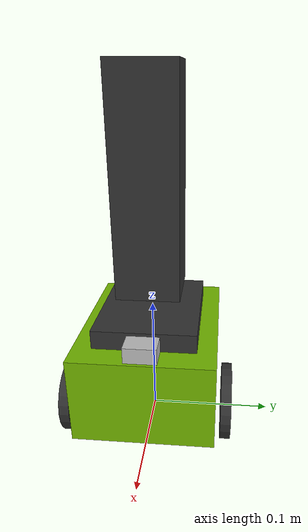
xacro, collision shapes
<?xml version='1.0'?>

<robot name="jetbot" xmlns:xacro="http://www.ros.org/wiki/xacro">
<xacro:include filename="$(find jetbot)/urdf/jetbot.gazebo" />

<!-- Define constant peroperties-->
<xacro:property name="degree_90" value="1.5708" />
<xacro:property name="wheel_radius" value="0.03" />
<xacro:property name="wheel_length" value="0.008" />
<xacro:property name="wheel_m" value="0.032" />
<xacro:property name="wheel_x_offset" value="-0.02" />
<xacro:property name="chassis_w" value="0.11" />
<xacro:property name="chassis_l" value="0.14" />
<xacro:property name="chassis_h" value="0.1" />
<xacro:property name="chassis_m" value="0.56" />
<xacro:property name="caster_ball_radius" value="0.0125" />
<xacro:property name="chassis_ixx" value="0.004" />
<xacro:property name="chassis_iyy" value="0.003" />
<xacro:property name="chassis_izz" value="0.004" />
<xacro:property name="chassis_igain" value="10.0" />
<xacro:property name="wheel_ixx" value="0.00006" />
<xacro:property name="wheel_iyy" value="0.00006" />
<xacro:property name="wheel_izz" value="0.00006" />
<xacro:property name="wheel_igain" value="6.5" />
<xacro:property name="hokuyo_w" value="0.05" />
<xacro:property name="hokuyo_l" value="0.05" />
<xacro:property name="hokuyo_h" value="0.07" />
<xacro:property name="hokuyo_m" value="1e-5" />
<xacro:property name="hokuyo_stand_h" value="0.10" />
<xacro:property name="jetson_w" value="0.08" />
<xacro:property name="jetson_l" value="0.1" />
<xacro:property name="jetson_h" value="0.029" />
<xacro:property name="jetson_m" value="0.023" />

<!-- Define RGB color names  -->
  <material name="black">
    <color rgba="0.2 0.2 0.2 1"/>
  </material>
  <material name="grey">
    <color rgba="0.75 0.75 0.75 1"/>
  </material>
  <material name="red">
        <color rgba="0.9 0.1 0.1 1"/>
  </material>
  <material name="green">
        <color rgba="0.46 0.73 0 1"/>
  </material>

<!-- Dummy Link for KDL does not support a root link with an inertia. -->
  <link name="robot_footprint"></link>
  <joint name="robot_footprint_joint" type="fixed">
    <origin xyz="0 0 0" rpy="0 0 ${degree_90}" />
    <parent link="robot_footprint"/>
    <child link="base_link" />
  </joint>

<!-- base_link Link  -->
  <link name='base_link'>
    <inertial>
      <mass value="${chassis_m*wheel_igain}"/>
      <origin xyz="0 0 ${chassis_h/2}" rpy="0 0 0"/>
      <inertia
          ixx="${chassis_ixx*chassis_igain}" ixy="0" ixz="0"
          iyy="${chassis_iyy*chassis_igain}" iyz="0"
          izz="${chassis_izz*chassis_igain}"
      />
    </inertial>
    <collision>
      <origin xyz="0 0 ${chassis_h/2}" rpy="0 0 0"/>
      <geometry>
        <box size="${chassis_w} ${chassis_l} ${chassis_l/2}"/>
      </geometry>
    </collision>

    <visual>
      <origin xyz="0 0 0" rpy="0 0 0"/>
      <geometry>
	<mesh filename="package://jetbot/meshes/jetbot-chassis_no_board.stl" scale="0.001 0.001 0.001" />
      </geometry>
      <material name="green"/>
    </visual>

  </link>
  <gazebo reference="base_link">
    <implicitSpringDamper>1</implicitSpringDamper>
    <material>Gazebo/Green</material>
  </gazebo>

<!-- back_caster Link  -->

  <link name="back_caster">
    <inertial>
      <mass value="${wheel_m}"/>
      <origin xyz="0 0 0" rpy="0 0 0"/>
      <inertia
          ixx="${wheel_ixx/20}" ixy="0" ixz="0"
          iyy="${wheel_iyy/20}" iyz="0"
          izz="${wheel_izz/20}"
      />
    </inertial>
    <collision>
      <origin xyz="0 0 0" rpy=" 0 0 0"/>
      <geometry>
        <sphere radius="${caster_ball_radius}"/>
      </geometry>
    </collision>
    <visual>
      <origin xyz="0 0 0" rpy=" 0 0 0"/>
      <geometry>
        <sphere radius="${caster_ball_radius/2}"/>
      </geometry>
    </visual>
    <material name="white"/>
  </link>
 <gazebo reference="back_caster">
    <material>Gazebo/White</material>
  </gazebo>

<!-- left_wheel Link  -->
  <link name="left_wheel">
    <inertial>
      <mass value="${wheel_m*1}"/>
      <origin xyz="0 0 0" rpy=" ${degree_90} 0 0"/>
      <inertia
          ixx="${wheel_ixx*wheel_igain}" ixy="0" ixz="0"
          iyy="${wheel_iyy*wheel_igain}" iyz="0"
          izz="${wheel_izz*wheel_igain}"
      />
    </inertial>
    <visual>
      <!-- Offset left joint back -0.008 same as stl wheel thickness -->
      <origin xyz="0 ${-0.008 -wheel_length}  0" rpy=" 0 0 ${degree_90}"/>
      <geometry>
       <mesh filename="package://jetbot/meshes/jetbot-wheel.stl" scale="0.001 0.001 0.001" />
      </geometry>
      <material name="black"/>
    </visual>
    <collision>
      <origin xyz="0 0 0" rpy=" ${degree_90} 0 0"/>
      <geometry>
        <cylinder length="${wheel_length}" radius="${wheel_radius}"/>
      </geometry>
    </collision>
  </link>
 <gazebo reference="left_wheel">
    <implicitSpringDamper>1</implicitSpringDamper>
    <material>Gazebo/Black</material>
  </gazebo>

<!-- right_wheel Link  -->
  <link name="right_wheel">
    <inertial>
      <mass value="${wheel_m*1}"/>
      <origin xyz="0 0 0" rpy=" ${degree_90} 0 0"/>
      <inertia
          ixx="${wheel_ixx*wheel_igain}" ixy="0" ixz="0"
          iyy="${wheel_iyy*wheel_igain}" iyz="0"
          izz="${wheel_izz*wheel_igain}"
      />
    </inertial>
    <visual>
      <origin xyz="0 ${wheel_length} 0" rpy=" 0 0 ${degree_90}"/>
      <geometry>
        <mesh filename="package://jetbot/meshes/jetbot-wheel.stl" scale="0.001 0.001 0.001" />
      </geometry>
      <material name="black"/>
    </visual>
    <collision>
      <origin xyz="0 0 0" rpy=" ${degree_90} 0 0"/>
      <geometry>
        <cylinder length="${wheel_length}" radius="${wheel_radius}"/>
      </geometry>
    </collision>
  </link>
 <gazebo reference="right_wheel">
    <implicitSpringDamper>1</implicitSpringDamper>
    <material>Gazebo/Black</material>
  </gazebo>

<!-- jetson_nano Link  -->
  <link name='jetson_nano'>
    <inertial>
      <mass value="${jetson_m}"/>
      <origin xyz="0.0 0 0" rpy=" 0 0 0"/>
      <inertia
          ixx="0.1e-6" ixy="0" ixz="0"
          iyy="0.1e-6" iyz="0"
          izz="0.1e-6"
      />
    </inertial>

    <collision>
      <origin xyz="0 0 ${chassis_h-jetson_h/2}" rpy=" 0 0 0"/>
      <geometry>
        <box size="${jetson_w} ${jetson_l} ${jetson_h}"/>
      </geometry>
    </collision>

    <visual>
      <origin xyz="0 0 0" rpy=" 0 0 0"/>
      <geometry>
        <mesh filename="package://jetbot/meshes/jetson_nano.stl" scale="0.001 0.001 0.001" />
      </geometry>
      <material name="black"/>
    </visual>
  </link>
  <gazebo reference="jetson_nano">
    <material>Gazebo/DarkGrey</material>
  </gazebo>

<!-- camera Link  -->
  <link name='camera'>
  <pose>0 0 0 0 0 0</pose>
    <inertial>
      <mass value="0.03"/>
      <origin xyz="0 0 0 " rpy=" 0 0 ${degree_90}"/>
      <inertia
          ixx="0.1e-6" ixy="0" ixz="0"
          iyy="0.1e-6" iyz="0"
          izz="0.1e-6"
      />
    </inertial>

    <collision name='camera_collision'>
     <origin xyz="0 0 0" rpy=" 0 0 0"/>
      <geometry>
        <box size="0.025 0.025 0.025"/>
      </geometry>

    </collision>

    <visual name='camera_visual'>
      <origin xyz="${-chassis_l/2+0.015} 0  ${-chassis_h+0.015}" rpy=" 0 0 ${degree_90}"/>
      <geometry>
        <mesh filename="package://jetbot/meshes/raspbery_pi_cam.stl" scale="0.001 0.001 0.001" />
      </geometry>
      <material name="grey"/>
    </visual>
  </link>
  <gazebo reference="camera">
    <material>Gazebo/Grey</material>
  </gazebo>

<!-- hokuyo Link  -->
  <link name='hokuyo'>
    <pose>0 0 0 0 0 0</pose>

    <inertial>
      <mass value="1e-5"/>
      <origin xyz="0.0 0 ${chassis_h/2}" rpy=" 0 0 0"/>
      <inertia
          ixx="0.1e-6" ixy="0" ixz="0"
          iyy="0.1e-6" iyz="0"
          izz="0.1e-6"
      />
    </inertial>

    <collision name='hokuyo_collision'>
      <origin xyz="0 0 ${chassis_h/2 -jetson_h/2 -hokuyo_stand_h/2 -hokuyo_h/2}" rpy=" 0 0 0"/>
      <geometry>
        <box size="0.05 0.05 ${hokuyo_h+hokuyo_stand_h}"/>
      </geometry>
    </collision>

    <visual name='hokuyo_stand_visual'>
      <origin xyz="0 0 ${-hokuyo_h  -hokuyo_stand_h/2}" rpy=" 0 0 0"/>
      <geometry>
        <box size="0.05 0.05 ${hokuyo_stand_h}"/>
      </geometry>
      <material name="black"/>
    </visual>

    <visual name='hokuyo_visual'>
      <origin xyz="0 0 ${-hokuyo_h/2}" rpy=" 0 0 0"/>
      <geometry>
        <mesh filename="package://jetbot/meshes/hokuyo.dae"/>
      </geometry>
      <material name="grey"/>
    </visual>
  </link>
  <gazebo reference="hokuyo">
    <material>Gazebo/Grey</material>
  </gazebo>

<!-- camera_link_optical Link  -->
   <link name="camera_optical">
   </link>

<!-- camera_optical_joint joint  -->
  <joint type="fixed" name="camera_optical_joint">
    <origin xyz="0 0 0" rpy="${-degree_90} 0 ${degree_90*3}"/>
    <parent link="camera"/>
    <child link="camera_optical"/>
  </joint>

<!-- hokuyo_joint joint lift the sensor 0.08 to have a better line of sight-->
  <joint type="fixed" name="hokuyo_joint">
    <origin xyz="0 0 ${chassis_h/2 +jetson_h +hokuyo_stand_h +hokuyo_h}" rpy="0 0  ${degree_90*3}"/>
    <parent link="base_link"/>
    <child link="hokuyo"/>
    <axis xyz="0 1 0" rpy="0 0 0"/>
  </joint>

<!-- jetson_nano joint  -->
  <joint type="fixed" name="jetson_nano_joint">
    <origin xyz="0 0 0" rpy="0 0 0"/>
    <parent link="base_link"/>
    <child link="jetson_nano"/>
  </joint>

<!-- camera_joint joint  -->
  <joint type="fixed" name="camera_joint">
    <origin xyz="0 ${-chassis_l/2+0.015} ${chassis_h -0.015}" rpy="0 0 ${-degree_90}"/>
    <parent link="base_link"/>
    <child link="camera"/>
  </joint>

<!-- back_caster_joint joint  -->
  <joint name="back_caster_joint" type="continuous">
   <origin xyz="0 0.05 ${caster_ball_radius/2}" rpy="0 0 ${degree_90*3}"/>
    <axis xyz="0 1 0"/>
    <parent link="base_link"/>
    <child link="back_caster"/>
    <limit effort="10000" velocity="1000"/>
    <dynamics damping="0.0" friction="0.0"/>
  </joint>

<!-- left_wheel_hinge joint  -->
  <joint name="left_wheel_hinge" type="continuous">
    <origin xyz="${chassis_w/2 +wheel_length} ${-chassis_l/2 + wheel_radius +0.0085} ${wheel_radius}" rpy="0 0 ${degree_90*3}"/>
    <axis xyz="0 1 0"/>
    <parent link="base_link"/>
    <child link="left_wheel"/>
    <limit effort="10000" velocity="1000"/>
    <dynamics damping="1.0" friction="1.0"/>
  </joint>
<!-- right_wheel_hinge joint  -->
  <joint name="right_wheel_hinge" type="continuous">
   <origin xyz="${-chassis_w/2 -wheel_length} ${-chassis_l/2 + wheel_radius +0.0085} ${wheel_radius}" rpy="0 0 ${degree_90*3}"/>
    <axis xyz="0 1 0"/>
    <parent link="base_link"/>
    <child link="right_wheel"/>
    <limit effort="10000" velocity="1000"/>
    <dynamics damping="1.0" friction="1.0"/>
  </joint>

</robot>

<!-- Tele-op command
    rosrun teleop_twist_keyboard teleop_twist_keyboard.py cmd_vel=cmd_vel _speed:=0.1 _turn:=0.5

-->
